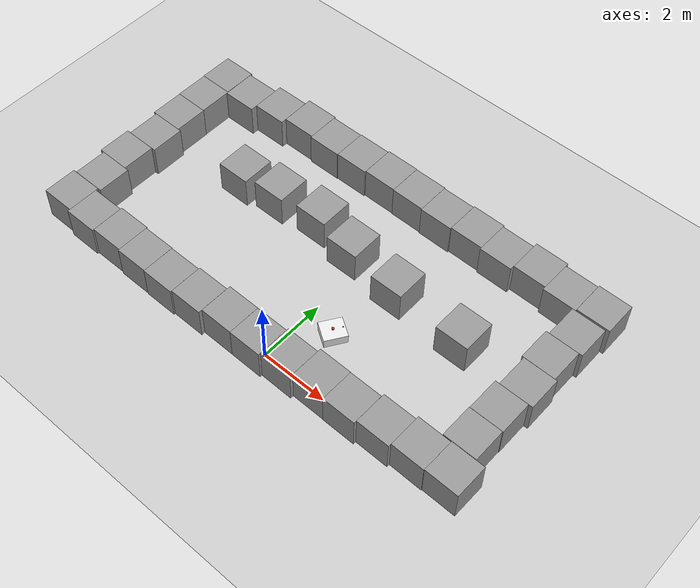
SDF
<sdf version="1.7">
 <world name="default">
  <light name="sun" type="directional">
   <pose>0 0 10 0 -0 0</pose>
   <diffuse>0.8 0.8 0.8 1</diffuse>
   <specular>0.2 0.2 0.2 1</specular>
   <attenuation>
    <range>1000</range>
    <constant>0.9</constant>
    <linear>0.01</linear>
    <quadratic>0.001</quadratic>
   </attenuation>
   <direction>-0.5 0.1 -0.9</direction>
   <spot><inner_angle>0</inner_angle><outer_angle>0</outer_angle><falloff>0</falloff></spot>
  </light>
  <model name="ground_plane">
   <static>1</static>
   <link name="link">
    <collision name="collision">
     <geometry><plane><normal>0 0 1</normal><size>100 100</size></plane></geometry>
     <surface><friction><ode><mu>100</mu><mu2>50</mu2></ode></friction></surface>
    </collision>
    <visual name="visual">
     <cast_shadows>0</cast_shadows>
     <geometry><plane><normal>0 0 1</normal><size>100 100</size></plane></geometry>
     <material>
      <script><uri>file://media/materials/scripts/gazebo.material</uri><name>Gazebo/Grey</name></script>
     </material>
    </visual>
   </link>
  </model>
  <gravity>0 0 -9.8</gravity>
  <magnetic_field>6e-06 2.3e-05 -4.2e-05</magnetic_field>
  <atmosphere type="adiabatic"/>
  <physics type="ode">
   <max_step_size>0.001</max_step_size>
   <real_time_factor>1</real_time_factor>
   <real_time_update_rate>1000</real_time_update_rate>
  </physics>
  <scene><ambient>0.4 0.4 0.4 1</ambient><background>0.7 0.7 0.7 1</background><shadows>1</shadows></scene>
  <audio><device>default</device></audio>
  <spherical_coordinates>
   <surface_model>EARTH_WGS84</surface_model>
   <latitude_deg>0</latitude_deg>
   <longitude_deg>0</longitude_deg>
   <elevation>0</elevation>
   <heading_deg>0</heading_deg>
  </spherical_coordinates>
  <model name="bunker_mini">
   <link name="base_link">
    <inertial>
     <pose>0.007917 0 0.14125 0 -0 0</pose>
     <mass>2.4</mass>
     <inertia>
      <ixx>0.0838745</ixx>
      <ixy>0</ixy>
      <ixz>-0.00263625</ixz>
      <iyy>0.110417</iyy>
      <iyz>0</iyz>
      <izz>0.150863</izz>
     </inertia>
    </inertial>
    <collision name="base_link_fixed_joint_lump__chassis_collision">
     <pose>0 0 0.1405 0 -0 0</pose>
     <geometry><box><size>0.66 0.61 0.281</size></box></geometry>
    </collision>
    <collision name="base_link_fixed_joint_lump__laser_frame_collision_1">
     <pose>0 0 0.3 0 -0 0</pose>
     <geometry><cylinder><length>0.041</length><radius>0.038</radius></cylinder></geometry>
    </collision>
    <collision name="base_link_fixed_joint_lump__front_caster_wheel_collision_2">
     <pose>0.25 0 0 0 -0 0</pose>
     <geometry><sphere><radius>0.05</radius></sphere></geometry>
     <surface><friction><ode><mu>0.001</mu><mu2>0.001</mu2></ode></friction></surface>
    </collision>
    <collision name="base_link_fixed_joint_lump__front_diamond_collision_3">
     <pose>0.27 0 0.28 0 -0 0.785398</pose>
     <geometry><box><size>0.03 0.03 0.02</size></box></geometry>
    </collision>
    <collision name="base_link_fixed_joint_lump__rear_caster_wheel_collision_4">
     <pose>-0.25 0 0 0 -0 0</pose>
     <geometry><sphere><radius>0.05</radius></sphere></geometry>
     <surface><friction><ode><mu>0.001</mu><mu2>0.001</mu2></ode></friction></surface>
    </collision>
    <visual name="base_link_fixed_joint_lump__chassis_visual">
     <pose>0 0 0.1405 0 -0 0</pose>
     <geometry><box><size>0.66 0.61 0.281</size></box></geometry>
     <material>
      <script><name>Gazebo/White</name><uri>file://media/materials/scripts/gazebo.material</uri></script>
     </material>
    </visual>
    <visual name="base_link_fixed_joint_lump__laser_frame_visual_1">
     <pose>0 0 0.3 0 -0 0</pose>
     <geometry><cylinder><length>0.041</length><radius>0.038</radius></cylinder></geometry>
     <material>
      <script><name>Gazebo/Red</name><uri>file://media/materials/scripts/gazebo.material</uri></script>
     </material>
    </visual>
    <visual name="base_link_fixed_joint_lump__front_caster_wheel_visual_2">
     <pose>0.25 0 0 0 -0 0</pose>
     <geometry><sphere><radius>0.05</radius></sphere></geometry>
     <material>
      <script><name>Gazebo/Black</name><uri>file://media/materials/scripts/gazebo.material</uri></script>
     </material>
    </visual>
    <visual name="base_link_fixed_joint_lump__front_diamond_visual_3">
     <pose>0.27 0 0.28 0 -0 0.785398</pose>
     <geometry><box><size>0.03 0.03 0.02</size></box></geometry>
     <material>
      <script><name>Gazebo/Blue</name><uri>file://media/materials/scripts/gazebo.material</uri></script>
     </material>
    </visual>
    <visual name="base_link_fixed_joint_lump__rear_caster_wheel_visual_4">
     <pose>-0.25 0 0 0 -0 0</pose>
     <geometry><sphere><radius>0.05</radius></sphere></geometry>
     <material>
      <script><name>Gazebo/Black</name><uri>file://media/materials/scripts/gazebo.material</uri></script>
     </material>
    </visual>
    <sensor name="rplidar_a2m12" type="ray">
     <visualize>1</visualize>
     <update_rate>10</update_rate>
     <ray>
      <scan>
       <horizontal>
        <samples>360</samples>
        <resolution>1</resolution>
        <min_angle>-3.14</min_angle>
        <max_angle>3.14</max_angle>
       </horizontal>
       <vertical><samples>1</samples><min_angle>0</min_angle><max_angle>0</max_angle></vertical>
      </scan>
      <range><min>0.3</min><max>12</max><resolution>1</resolution></range>
     </ray>
     <plugin name="laser_controller" filename="libgazebo_ros_ray_sensor.so">
      <ros><argument>~/out:=scan</argument></ros>
      <output_type>sensor_msgs/LaserScan</output_type>
      <frame_name>laser_frame</frame_name>
     </plugin>
     <pose>0 0 0.3 0 -0 0</pose>
    </sensor>
   </link>
   <joint name="left_wheel_joint" type="revolute">
    <pose relative_to="base_link">0 0.25 0 -1.5708 0 0</pose>
    <parent>base_link</parent>
    <child>left_wheel</child>
    <axis>
     <xyz>0 0 1</xyz>
     <limit><lower>-1e+16</lower><upper>1e+16</upper></limit>
     <dynamics><spring_reference>0</spring_reference><spring_stiffness>0</spring_stiffness></dynamics>
    </axis>
   </joint>
   <link name="left_wheel">
    <pose relative_to="left_wheel_joint">0 0 0 0 -0 0</pose>
    <inertial>
     <mass>0.1</mass>
     <inertia>
      <ixx>7.58333e-05</ixx>
      <ixy>0</ixy>
      <ixz>0</ixz>
      <iyy>7.58333e-05</iyy>
      <iyz>0</iyz>
      <izz>0.000125</izz>
     </inertia>
    </inertial>
    <collision name="left_wheel_collision">
     <geometry><cylinder><length>0.04</length><radius>0.05</radius></cylinder></geometry>
    </collision>
    <visual name="left_wheel_visual">
     <geometry><cylinder><length>0.04</length><radius>0.05</radius></cylinder></geometry>
     <material>
      <script><name>Gazebo/Blue</name><uri>file://media/materials/scripts/gazebo.material</uri></script>
     </material>
    </visual>
   </link>
   <joint name="right_wheel_joint" type="revolute">
    <pose relative_to="base_link">0 -0.25 0 1.5708 -0 0</pose>
    <parent>base_link</parent>
    <child>right_wheel</child>
    <axis>
     <xyz>0 0 -1</xyz>
     <limit><lower>-1e+16</lower><upper>1e+16</upper></limit>
     <dynamics><spring_reference>0</spring_reference><spring_stiffness>0</spring_stiffness></dynamics>
    </axis>
   </joint>
   <link name="right_wheel">
    <pose relative_to="right_wheel_joint">0 0 0 0 -0 0</pose>
    <inertial>
     <mass>0.1</mass>
     <inertia>
      <ixx>7.58333e-05</ixx>
      <ixy>0</ixy>
      <ixz>0</ixz>
      <iyy>7.58333e-05</iyy>
      <iyz>0</iyz>
      <izz>0.000125</izz>
     </inertia>
    </inertial>
    <collision name="right_wheel_collision">
     <geometry><cylinder><length>0.04</length><radius>0.05</radius></cylinder></geometry>
    </collision>
    <visual name="right_wheel_visual">
     <geometry><cylinder><length>0.04</length><radius>0.05</radius></cylinder></geometry>
     <material>
      <script><name>Gazebo/Blue</name><uri>file://media/materials/scripts/gazebo.material</uri></script>
     </material>
    </visual>
   </link>
   <static>0</static>
   <plugin name="diff_drive" filename="libgazebo_ros_diff_drive.so">
    <left_joint>left_wheel_joint</left_joint>
    <right_joint>right_wheel_joint</right_joint>
    <wheel_separation>0.5</wheel_separation>
    <wheel_diameter>0.1</wheel_diameter>
    <max_wheel_torque>200</max_wheel_torque>
    <max_wheel_acceleration>10</max_wheel_acceleration>
    <odometry_frame>odom</odometry_frame>
    <robot_base_frame>base_link</robot_base_frame>
    <publish_odom>1</publish_odom>
    <publish_odom_tf>1</publish_odom_tf>
    <publish_wheel_tf>1</publish_wheel_tf>
   </plugin>
   <pose>0.89592 1.58402 0.05 0 -0 0.990217</pose>
  </model>
  <model name="unit_box">
   <pose>-0.373525 3.81277 0.499995 0 1e-05 1.1e-05</pose>
   <link name="link">
    <inertial>
     <mass>1</mass>
     <inertia>
      <ixx>0.166667</ixx>
      <ixy>0</ixy>
      <ixz>0</ixz>
      <iyy>0.166667</iyy>
      <iyz>0</iyz>
      <izz>0.166667</izz>
     </inertia>
    </inertial>
    <collision name="collision"><geometry><box><size>1 1 1</size></box></geometry></collision>
    <visual name="visual">
     <geometry><box><size>1 1 1</size></box></geometry>
     <material>
      <script><name>Gazebo/Grey</name><uri>file://media/materials/scripts/gazebo.material</uri></script>
     </material>
    </visual>
   </link>
  </model>
  <model name="unit_box_0">
   <pose>-1.71056 4.0812 0.499995 1e-05 -0 0.000463</pose>
   <link name="link">
    <inertial>
     <mass>1</mass>
     <inertia>
      <ixx>0.166667</ixx>
      <ixy>0</ixy>
      <ixz>0</ixz>
      <iyy>0.166667</iyy>
      <iyz>0</iyz>
      <izz>0.166667</izz>
     </inertia>
    </inertial>
    <collision name="collision"><geometry><box><size>1 1 1</size></box></geometry></collision>
    <visual name="visual">
     <geometry><box><size>1 1 1</size></box></geometry>
     <material>
      <script><name>Gazebo/Grey</name><uri>file://media/materials/scripts/gazebo.material</uri></script>
     </material>
    </visual>
   </link>
  </model>
  <model name="unit_box_1">
   <pose>1.32828 3.61953 0.499995 1e-05 -0 1e-05</pose>
   <link name="link">
    <inertial>
     <mass>1</mass>
     <inertia>
      <ixx>0.166667</ixx>
      <ixy>0</ixy>
      <ixz>0</ixz>
      <iyy>0.166667</iyy>
      <iyz>0</iyz>
      <izz>0.166667</izz>
     </inertia>
    </inertial>
    <collision name="collision"><geometry><box><size>1 1 1</size></box></geometry></collision>
    <visual name="visual">
     <geometry><box><size>1 1 1</size></box></geometry>
     <material>
      <script><name>Gazebo/Grey</name><uri>file://media/materials/scripts/gazebo.material</uri></script>
     </material>
    </visual>
   </link>
  </model>
  <model name="unit_box_2">
   <pose>-3.13165 3.93065 0.499995 1e-05 -0 0.00046</pose>
   <link name="link">
    <inertial>
     <mass>1</mass>
     <inertia>
      <ixx>0.166667</ixx>
      <ixy>0</ixy>
      <ixz>0</ixz>
      <iyy>0.166667</iyy>
      <iyz>0</iyz>
      <izz>0.166667</izz>
     </inertia>
    </inertial>
    <collision name="collision"><geometry><box><size>1 1 1</size></box></geometry></collision>
    <visual name="visual">
     <geometry><box><size>1 1 1</size></box></geometry>
     <material>
      <script><name>Gazebo/Grey</name><uri>file://media/materials/scripts/gazebo.material</uri></script>
     </material>
    </visual>
   </link>
  </model>
  <model name="unit_box_3">
   <pose>-4.32146 3.76959 0.499995 1e-05 -0 0</pose>
   <link name="link">
    <inertial>
     <mass>1</mass>
     <inertia>
      <ixx>0.166667</ixx>
      <ixy>0</ixy>
      <ixz>0</ixz>
      <iyy>0.166667</iyy>
      <iyz>0</iyz>
      <izz>0.166667</izz>
     </inertia>
    </inertial>
    <collision name="collision"><geometry><box><size>1 1 1</size></box></geometry></collision>
    <visual name="visual">
     <geometry><box><size>1 1 1</size></box></geometry>
     <material>
      <script><name>Gazebo/Grey</name><uri>file://media/materials/scripts/gazebo.material</uri></script>
     </material>
    </visual>
   </link>
  </model>
  <model name="unit_box_4">
   <pose>3.56444 3.50287 0.499995 1e-05 -0 0</pose>
   <link name="link">
    <inertial>
     <mass>1</mass>
     <inertia>
      <ixx>0.166667</ixx>
      <ixy>0</ixy>
      <ixz>0</ixz>
      <iyy>0.166667</iyy>
      <iyz>0</iyz>
      <izz>0.166667</izz>
     </inertia>
    </inertial>
    <collision name="collision"><geometry><box><size>1 1 1</size></box></geometry></collision>
    <visual name="visual">
     <geometry><box><size>1 1 1</size></box></geometry>
     <material>
      <script><name>Gazebo/Grey</name><uri>file://media/materials/scripts/gazebo.material</uri></script>
     </material>
    </visual>
   </link>
  </model>
  <model name="unit_box_5">
   <pose>5.86144 0.232165 0.499995 -1e-05 -0 -0.012625</pose>
   <link name="link">
    <inertial>
     <mass>1</mass>
     <inertia>
      <ixx>0.166667</ixx>
      <ixy>0</ixy>
      <ixz>0</ixz>
      <iyy>0.166667</iyy>
      <iyz>0</iyz>
      <izz>0.166667</izz>
     </inertia>
    </inertial>
    <collision name="collision"><geometry><box><size>1 1 1</size></box></geometry></collision>
    <visual name="visual">
     <geometry><box><size>1 1 1</size></box></geometry>
     <material>
      <script><name>Gazebo/Grey</name><uri>file://media/materials/scripts/gazebo.material</uri></script>
     </material>
    </visual>
   </link>
  </model>
  <model name="unit_box_5_clone">
   <pose>5.59621 1.24141 0.499995 -1e-05 -0 -0.003784</pose>
   <link name="link">
    <inertial>
     <mass>1</mass>
     <inertia>
      <ixx>0.166667</ixx>
      <ixy>0</ixy>
      <ixz>0</ixz>
      <iyy>0.166667</iyy>
      <iyz>0</iyz>
      <izz>0.166667</izz>
     </inertia>
    </inertial>
    <collision name="collision"><geometry><box><size>1 1 1</size></box></geometry></collision>
    <visual name="visual">
     <geometry><box><size>1 1 1</size></box></geometry>
     <material>
      <script><name>Gazebo/Grey</name><uri>file://media/materials/scripts/gazebo.material</uri></script>
     </material>
    </visual>
   </link>
  </model>
  <model name="unit_box_5_clone_0">
   <pose>5.61532 2.24167 0.5 -0 -0 -0.003706</pose>
   <link name="link">
    <inertial>
     <mass>1</mass>
     <inertia>
      <ixx>0.166667</ixx>
      <ixy>0</ixy>
      <ixz>0</ixz>
      <iyy>0.166667</iyy>
      <iyz>0</iyz>
      <izz>0.166667</izz>
     </inertia>
    </inertial>
    <collision name="collision"><geometry><box><size>1 1 1</size></box></geometry></collision>
    <visual name="visual">
     <geometry><box><size>1 1 1</size></box></geometry>
     <material>
      <script><name>Gazebo/Grey</name><uri>file://media/materials/scripts/gazebo.material</uri></script>
     </material>
    </visual>
   </link>
  </model>
  <model name="unit_box_5_clone_1">
   <pose>5.73862 3.24132 0.499995 -1e-05 -0 -0.003761</pose>
   <link name="link">
    <inertial>
     <mass>1</mass>
     <inertia>
      <ixx>0.166667</ixx>
      <ixy>0</ixy>
      <ixz>0</ixz>
      <iyy>0.166667</iyy>
      <iyz>0</iyz>
      <izz>0.166667</izz>
     </inertia>
    </inertial>
    <collision name="collision"><geometry><box><size>1 1 1</size></box></geometry></collision>
    <visual name="visual">
     <geometry><box><size>1 1 1</size></box></geometry>
     <material>
      <script><name>Gazebo/Grey</name><uri>file://media/materials/scripts/gazebo.material</uri></script>
     </material>
    </visual>
   </link>
  </model>
  <model name="unit_box_5_clone_2">
   <pose>5.67694 4.24242 0.499995 1e-05 -0 -0.005354</pose>
   <link name="link">
    <inertial>
     <mass>1</mass>
     <inertia>
      <ixx>0.166667</ixx>
      <ixy>0</ixy>
      <ixz>0</ixz>
      <iyy>0.166667</iyy>
      <iyz>0</iyz>
      <izz>0.166667</izz>
     </inertia>
    </inertial>
    <collision name="collision"><geometry><box><size>1 1 1</size></box></geometry></collision>
    <visual name="visual">
     <geometry><box><size>1 1 1</size></box></geometry>
     <material>
      <script><name>Gazebo/Grey</name><uri>file://media/materials/scripts/gazebo.material</uri></script>
     </material>
    </visual>
   </link>
  </model>
  <model name="unit_box_5_clone_3">
   <pose>5.7798 5.24191 0.499995 -1e-05 -0 -0.005334</pose>
   <link name="link">
    <inertial>
     <mass>1</mass>
     <inertia>
      <ixx>0.166667</ixx>
      <ixy>0</ixy>
      <ixz>0</ixz>
      <iyy>0.166667</iyy>
      <iyz>0</iyz>
      <izz>0.166667</izz>
     </inertia>
    </inertial>
    <collision name="collision"><geometry><box><size>1 1 1</size></box></geometry></collision>
    <visual name="visual">
     <geometry><box><size>1 1 1</size></box></geometry>
     <material>
      <script><name>Gazebo/Grey</name><uri>file://media/materials/scripts/gazebo.material</uri></script>
     </material>
    </visual>
   </link>
  </model>
  <model name="unit_box_5_clone_4">
   <pose>5.87593 6.29081 0.5 0 -0 -0.003578</pose>
   <link name="link">
    <inertial>
     <mass>1</mass>
     <inertia>
      <ixx>0.166667</ixx>
      <ixy>0</ixy>
      <ixz>0</ixz>
      <iyy>0.166667</iyy>
      <iyz>0</iyz>
      <izz>0.166667</izz>
     </inertia>
    </inertial>
    <collision name="collision"><geometry><box><size>1 1 1</size></box></geometry></collision>
    <visual name="visual">
     <geometry><box><size>1 1 1</size></box></geometry>
     <material>
      <script><name>Gazebo/Grey</name><uri>file://media/materials/scripts/gazebo.material</uri></script>
     </material>
    </visual>
   </link>
  </model>
  <model name="unit_box_5_clone_5">
   <pose>4.87555 6.24599 0.5 0 0 -0.0034</pose>
   <link name="link">
    <inertial>
     <mass>1</mass>
     <inertia>
      <ixx>0.166667</ixx>
      <ixy>0</ixy>
      <ixz>0</ixz>
      <iyy>0.166667</iyy>
      <iyz>0</iyz>
      <izz>0.166667</izz>
     </inertia>
    </inertial>
    <collision name="collision"><geometry><box><size>1 1 1</size></box></geometry></collision>
    <visual name="visual">
     <geometry><box><size>1 1 1</size></box></geometry>
     <material>
      <script><name>Gazebo/Grey</name><uri>file://media/materials/scripts/gazebo.material</uri></script>
     </material>
    </visual>
   </link>
  </model>
  <model name="unit_box_5_clone_6">
   <pose>3.87584 6.33732 0.5 0 0 -0.003406</pose>
   <link name="link">
    <inertial>
     <mass>1</mass>
     <inertia>
      <ixx>0.166667</ixx>
      <ixy>0</ixy>
      <ixz>0</ixz>
      <iyy>0.166667</iyy>
      <iyz>0</iyz>
      <izz>0.166667</izz>
     </inertia>
    </inertial>
    <collision name="collision"><geometry><box><size>1 1 1</size></box></geometry></collision>
    <visual name="visual">
     <geometry><box><size>1 1 1</size></box></geometry>
     <material>
      <script><name>Gazebo/Grey</name><uri>file://media/materials/scripts/gazebo.material</uri></script>
     </material>
    </visual>
   </link>
  </model>
  <model name="unit_box_5_clone_7">
   <pose>2.87509 6.21199 0.5 0 -0 -0.002672</pose>
   <link name="link">
    <inertial>
     <mass>1</mass>
     <inertia>
      <ixx>0.166667</ixx>
      <ixy>0</ixy>
      <ixz>0</ixz>
      <iyy>0.166667</iyy>
      <iyz>0</iyz>
      <izz>0.166667</izz>
     </inertia>
    </inertial>
    <collision name="collision"><geometry><box><size>1 1 1</size></box></geometry></collision>
    <visual name="visual">
     <geometry><box><size>1 1 1</size></box></geometry>
     <material>
      <script><name>Gazebo/Grey</name><uri>file://media/materials/scripts/gazebo.material</uri></script>
     </material>
    </visual>
   </link>
  </model>
  <model name="unit_box_5_clone_8">
   <pose>1.8752 6.25947 0.499995 0 -1e-05 -0.002654</pose>
   <link name="link">
    <inertial>
     <mass>1</mass>
     <inertia>
      <ixx>0.166667</ixx>
      <ixy>0</ixy>
      <ixz>0</ixz>
      <iyy>0.166667</iyy>
      <iyz>0</iyz>
      <izz>0.166667</izz>
     </inertia>
    </inertial>
    <collision name="collision"><geometry><box><size>1 1 1</size></box></geometry></collision>
    <visual name="visual">
     <geometry><box><size>1 1 1</size></box></geometry>
     <material>
      <script><name>Gazebo/Grey</name><uri>file://media/materials/scripts/gazebo.material</uri></script>
     </material>
    </visual>
   </link>
  </model>
  <model name="unit_box_5_clone_9">
   <pose>0.874463 6.22172 0.499995 0 9e-06 -0.001272</pose>
   <link name="link">
    <inertial>
     <mass>1</mass>
     <inertia>
      <ixx>0.166667</ixx>
      <ixy>0</ixy>
      <ixz>0</ixz>
      <iyy>0.166667</iyy>
      <iyz>0</iyz>
      <izz>0.166667</izz>
     </inertia>
    </inertial>
    <collision name="collision"><geometry><box><size>1 1 1</size></box></geometry></collision>
    <visual name="visual">
     <geometry><box><size>1 1 1</size></box></geometry>
     <material>
      <script><name>Gazebo/Grey</name><uri>file://media/materials/scripts/gazebo.material</uri></script>
     </material>
    </visual>
   </link>
  </model>
  <model name="unit_box_5_clone_10">
   <pose>-0.126002 6.24738 0.499995 0 1e-05 -0.000284</pose>
   <link name="link">
    <inertial>
     <mass>1</mass>
     <inertia>
      <ixx>0.166667</ixx>
      <ixy>0</ixy>
      <ixz>0</ixz>
      <iyy>0.166667</iyy>
      <iyz>0</iyz>
      <izz>0.166667</izz>
     </inertia>
    </inertial>
    <collision name="collision"><geometry><box><size>1 1 1</size></box></geometry></collision>
    <visual name="visual">
     <geometry><box><size>1 1 1</size></box></geometry>
     <material>
      <script><name>Gazebo/Grey</name><uri>file://media/materials/scripts/gazebo.material</uri></script>
     </material>
    </visual>
   </link>
  </model>
  <model name="unit_box_5_clone_11">
   <pose>-1.12649 6.26181 0.5 0 -0 0.000678</pose>
   <link name="link">
    <inertial>
     <mass>1</mass>
     <inertia>
      <ixx>0.166667</ixx>
      <ixy>0</ixy>
      <ixz>0</ixz>
      <iyy>0.166667</iyy>
      <iyz>0</iyz>
      <izz>0.166667</izz>
     </inertia>
    </inertial>
    <collision name="collision"><geometry><box><size>1 1 1</size></box></geometry></collision>
    <visual name="visual">
     <geometry><box><size>1 1 1</size></box></geometry>
     <material>
      <script><name>Gazebo/Grey</name><uri>file://media/materials/scripts/gazebo.material</uri></script>
     </material>
    </visual>
   </link>
  </model>
  <model name="unit_box_5_clone_12">
   <pose>-2.12724 6.22117 0.5 0 -0 0.002372</pose>
   <link name="link">
    <inertial>
     <mass>1</mass>
     <inertia>
      <ixx>0.166667</ixx>
      <ixy>0</ixy>
      <ixz>0</ixz>
      <iyy>0.166667</iyy>
      <iyz>0</iyz>
      <izz>0.166667</izz>
     </inertia>
    </inertial>
    <collision name="collision"><geometry><box><size>1 1 1</size></box></geometry></collision>
    <visual name="visual">
     <geometry><box><size>1 1 1</size></box></geometry>
     <material>
      <script><name>Gazebo/Grey</name><uri>file://media/materials/scripts/gazebo.material</uri></script>
     </material>
    </visual>
   </link>
  </model>
  <model name="unit_box_5_clone_13">
   <pose>-3.12745 6.20067 0.499996 -7e-06 -0 0.002893</pose>
   <link name="link">
    <inertial>
     <mass>1</mass>
     <inertia>
      <ixx>0.166667</ixx>
      <ixy>0</ixy>
      <ixz>0</ixz>
      <iyy>0.166667</iyy>
      <iyz>0</iyz>
      <izz>0.166667</izz>
     </inertia>
    </inertial>
    <collision name="collision"><geometry><box><size>1 1 1</size></box></geometry></collision>
    <visual name="visual">
     <geometry><box><size>1 1 1</size></box></geometry>
     <material>
      <script><name>Gazebo/Grey</name><uri>file://media/materials/scripts/gazebo.material</uri></script>
     </material>
    </visual>
   </link>
  </model>
  <model name="unit_box_5_clone_14">
   <pose>-4.12831 6.23987 0.499995 0 -1e-05 0.00436</pose>
   <link name="link">
    <inertial>
     <mass>1</mass>
     <inertia>
      <ixx>0.166667</ixx>
      <ixy>0</ixy>
      <ixz>0</ixz>
      <iyy>0.166667</iyy>
      <iyz>0</iyz>
      <izz>0.166667</izz>
     </inertia>
    </inertial>
    <collision name="collision"><geometry><box><size>1 1 1</size></box></geometry></collision>
    <visual name="visual">
     <geometry><box><size>1 1 1</size></box></geometry>
     <material>
      <script><name>Gazebo/Grey</name><uri>file://media/materials/scripts/gazebo.material</uri></script>
     </material>
    </visual>
   </link>
  </model>
  <model name="unit_box_5_clone_15">
   <pose>-5.1286 6.0668 0.499995 -1e-05 -0 0.007472</pose>
   <link name="link">
    <inertial>
     <mass>1</mass>
     <inertia>
      <ixx>0.166667</ixx>
      <ixy>0</ixy>
      <ixz>0</ixz>
      <iyy>0.166667</iyy>
      <iyz>0</iyz>
      <izz>0.166667</izz>
     </inertia>
    </inertial>
    <collision name="collision"><geometry><box><size>1 1 1</size></box></geometry></collision>
    <visual name="visual">
     <geometry><box><size>1 1 1</size></box></geometry>
     <material>
      <script><name>Gazebo/Grey</name><uri>file://media/materials/scripts/gazebo.material</uri></script>
     </material>
    </visual>
   </link>
  </model>
  <model name="unit_box_5_clone_16">
   <pose>-6.12718 5.8605 0.499995 0 -1e-05 0.007694</pose>
   <link name="link">
    <inertial>
     <mass>1</mass>
     <inertia>
      <ixx>0.166667</ixx>
      <ixy>0</ixy>
      <ixz>0</ixz>
      <iyy>0.166667</iyy>
      <iyz>0</iyz>
      <izz>0.166667</izz>
     </inertia>
    </inertial>
    <collision name="collision"><geometry><box><size>1 1 1</size></box></geometry></collision>
    <visual name="visual">
     <geometry><box><size>1 1 1</size></box></geometry>
     <material>
      <script><name>Gazebo/Grey</name><uri>file://media/materials/scripts/gazebo.material</uri></script>
     </material>
    </visual>
   </link>
  </model>
  <model name="unit_box_5_clone_17">
   <pose>-7.13394 5.91589 0.499995 -1e-05 -0 -0.005575</pose>
   <link name="link">
    <inertial>
     <mass>1</mass>
     <inertia>
      <ixx>0.166667</ixx>
      <ixy>0</ixy>
      <ixz>0</ixz>
      <iyy>0.166667</iyy>
      <iyz>0</iyz>
      <izz>0.166667</izz>
     </inertia>
    </inertial>
    <collision name="collision"><geometry><box><size>1 1 1</size></box></geometry></collision>
    <visual name="visual">
     <geometry><box><size>1 1 1</size></box></geometry>
     <material>
      <script><name>Gazebo/Grey</name><uri>file://media/materials/scripts/gazebo.material</uri></script>
     </material>
    </visual>
   </link>
  </model>
  <model name="unit_box_5_clone_18">
   <pose>-7.12659 4.91582 0.5 0 -0 -0.005572</pose>
   <link name="link">
    <inertial>
     <mass>1</mass>
     <inertia>
      <ixx>0.166667</ixx>
      <ixy>0</ixy>
      <ixz>0</ixz>
      <iyy>0.166667</iyy>
      <iyz>0</iyz>
      <izz>0.166667</izz>
     </inertia>
    </inertial>
    <collision name="collision"><geometry><box><size>1 1 1</size></box></geometry></collision>
    <visual name="visual">
     <geometry><box><size>1 1 1</size></box></geometry>
     <material>
      <script><name>Gazebo/Grey</name><uri>file://media/materials/scripts/gazebo.material</uri></script>
     </material>
    </visual>
   </link>
  </model>
  <model name="unit_box_5_clone_19">
   <pose>-7.12298 3.91578 0.5 0 -0 -0.005572</pose>
   <link name="link">
    <inertial>
     <mass>1</mass>
     <inertia>
      <ixx>0.166667</ixx>
      <ixy>0</ixy>
      <ixz>0</ixz>
      <iyy>0.166667</iyy>
      <iyz>0</iyz>
      <izz>0.166667</izz>
     </inertia>
    </inertial>
    <collision name="collision"><geometry><box><size>1 1 1</size></box></geometry></collision>
    <visual name="visual">
     <geometry><box><size>1 1 1</size></box></geometry>
     <material>
      <script><name>Gazebo/Grey</name><uri>file://media/materials/scripts/gazebo.material</uri></script>
     </material>
    </visual>
   </link>
  </model>
  <model name="unit_box_5_clone_20">
   <pose>-7.04056 2.9152 0.5 0 -0 -0.005739</pose>
   <link name="link">
    <inertial>
     <mass>1</mass>
     <inertia>
      <ixx>0.166667</ixx>
      <ixy>0</ixy>
      <ixz>0</ixz>
      <iyy>0.166667</iyy>
      <iyz>0</iyz>
      <izz>0.166667</izz>
     </inertia>
    </inertial>
    <collision name="collision"><geometry><box><size>1 1 1</size></box></geometry></collision>
    <visual name="visual">
     <geometry><box><size>1 1 1</size></box></geometry>
     <material>
      <script><name>Gazebo/Grey</name><uri>file://media/materials/scripts/gazebo.material</uri></script>
     </material>
    </visual>
   </link>
  </model>
  <model name="unit_box_5_clone_21">
   <pose>-7.15561 1.91562 0.499995 1e-05 -0 -0.006299</pose>
   <link name="link">
    <inertial>
     <mass>1</mass>
     <inertia>
      <ixx>0.166667</ixx>
      <ixy>0</ixy>
      <ixz>0</ixz>
      <iyy>0.166667</iyy>
      <iyz>0</iyz>
      <izz>0.166667</izz>
     </inertia>
    </inertial>
    <collision name="collision"><geometry><box><size>1 1 1</size></box></geometry></collision>
    <visual name="visual">
     <geometry><box><size>1 1 1</size></box></geometry>
     <material>
      <script><name>Gazebo/Grey</name><uri>file://media/materials/scripts/gazebo.material</uri></script>
     </material>
    </visual>
   </link>
  </model>
  <model name="unit_box_5_clone_22">
   <pose>-7.04213 0.914873 0.499995 -1e-05 -0 -0.006305</pose>
   <link name="link">
    <inertial>
     <mass>1</mass>
     <inertia>
      <ixx>0.166667</ixx>
      <ixy>0</ixy>
      <ixz>0</ixz>
      <iyy>0.166667</iyy>
      <iyz>0</iyz>
      <izz>0.166667</izz>
     </inertia>
    </inertial>
    <collision name="collision"><geometry><box><size>1 1 1</size></box></geometry></collision>
    <visual name="visual">
     <geometry><box><size>1 1 1</size></box></geometry>
     <material>
      <script><name>Gazebo/Grey</name><uri>file://media/materials/scripts/gazebo.material</uri></script>
     </material>
    </visual>
   </link>
  </model>
  <model name="unit_box_5_clone_23">
   <pose>-7.14778 -0.087112 0.499995 1e-05 0 -0.004209</pose>
   <link name="link">
    <inertial>
     <mass>1</mass>
     <inertia>
      <ixx>0.166667</ixx>
      <ixy>0</ixy>
      <ixz>0</ixz>
      <iyy>0.166667</iyy>
      <iyz>0</iyz>
      <izz>0.166667</izz>
     </inertia>
    </inertial>
    <collision name="collision"><geometry><box><size>1 1 1</size></box></geometry></collision>
    <visual name="visual">
     <geometry><box><size>1 1 1</size></box></geometry>
     <material>
      <script><name>Gazebo/Grey</name><uri>file://media/materials/scripts/gazebo.material</uri></script>
     </material>
    </visual>
   </link>
  </model>
  <model name="unit_box_5_clone_24">
   <pose>-6.14802 -0.164766 0.5 0 0 -0.004384</pose>
   <link name="link">
    <inertial>
     <mass>1</mass>
     <inertia>
      <ixx>0.166667</ixx>
      <ixy>0</ixy>
      <ixz>0</ixz>
      <iyy>0.166667</iyy>
      <iyz>0</iyz>
      <izz>0.166667</izz>
     </inertia>
    </inertial>
    <collision name="collision"><geometry><box><size>1 1 1</size></box></geometry></collision>
    <visual name="visual">
     <geometry><box><size>1 1 1</size></box></geometry>
     <material>
      <script><name>Gazebo/Grey</name><uri>file://media/materials/scripts/gazebo.material</uri></script>
     </material>
    </visual>
   </link>
  </model>
  <model name="unit_box_5_clone_25">
   <pose>-5.14757 -0.121706 0.499995 -1e-05 -0 -0.004284</pose>
   <link name="link">
    <inertial>
     <mass>1</mass>
     <inertia>
      <ixx>0.166667</ixx>
      <ixy>0</ixy>
      <ixz>0</ixz>
      <iyy>0.166667</iyy>
      <iyz>0</iyz>
      <izz>0.166667</izz>
     </inertia>
    </inertial>
    <collision name="collision"><geometry><box><size>1 1 1</size></box></geometry></collision>
    <visual name="visual">
     <geometry><box><size>1 1 1</size></box></geometry>
     <material>
      <script><name>Gazebo/Grey</name><uri>file://media/materials/scripts/gazebo.material</uri></script>
     </material>
    </visual>
   </link>
  </model>
  <model name="unit_box_5_clone_26">
   <pose>-4.14764 -0.156799 0.499995 1e-05 -0 -0.00423</pose>
   <link name="link">
    <inertial>
     <mass>1</mass>
     <inertia>
      <ixx>0.166667</ixx>
      <ixy>0</ixy>
      <ixz>0</ixz>
      <iyy>0.166667</iyy>
      <iyz>0</iyz>
      <izz>0.166667</izz>
     </inertia>
    </inertial>
    <collision name="collision"><geometry><box><size>1 1 1</size></box></geometry></collision>
    <visual name="visual">
     <geometry><box><size>1 1 1</size></box></geometry>
     <material>
      <script><name>Gazebo/Grey</name><uri>file://media/materials/scripts/gazebo.material</uri></script>
     </material>
    </visual>
   </link>
  </model>
  <model name="unit_box_5_clone_27">
   <pose>-3.14753 -0.173837 0.499995 1e-05 -0 -0.004401</pose>
   <link name="link">
    <inertial>
     <mass>1</mass>
     <inertia>
      <ixx>0.166667</ixx>
      <ixy>0</ixy>
      <ixz>0</ixz>
      <iyy>0.166667</iyy>
      <iyz>0</iyz>
      <izz>0.166667</izz>
     </inertia>
    </inertial>
    <collision name="collision"><geometry><box><size>1 1 1</size></box></geometry></collision>
    <visual name="visual">
     <geometry><box><size>1 1 1</size></box></geometry>
     <material>
      <script><name>Gazebo/Grey</name><uri>file://media/materials/scripts/gazebo.material</uri></script>
     </material>
    </visual>
   </link>
  </model>
  <model name="unit_box_5_clone_28">
   <pose>-2.14697 -0.13785 0.499995 1e-05 -0 -0.004736</pose>
   <link name="link">
    <inertial>
     <mass>1</mass>
     <inertia>
      <ixx>0.166667</ixx>
      <ixy>0</ixy>
      <ixz>0</ixz>
      <iyy>0.166667</iyy>
      <iyz>0</iyz>
      <izz>0.166667</izz>
     </inertia>
    </inertial>
    <collision name="collision"><geometry><box><size>1 1 1</size></box></geometry></collision>
    <visual name="visual">
     <geometry><box><size>1 1 1</size></box></geometry>
     <material>
      <script><name>Gazebo/Grey</name><uri>file://media/materials/scripts/gazebo.material</uri></script>
     </material>
    </visual>
   </link>
  </model>
  <model name="unit_box_5_clone_29">
   <pose>-1.14469 -0.03997 0.5 0 0 -0.008339</pose>
   <link name="link">
    <inertial>
     <mass>1</mass>
     <inertia>
      <ixx>0.166667</ixx>
      <ixy>0</ixy>
      <ixz>0</ixz>
      <iyy>0.166667</iyy>
      <iyz>0</iyz>
      <izz>0.166667</izz>
     </inertia>
    </inertial>
    <collision name="collision"><geometry><box><size>1 1 1</size></box></geometry></collision>
    <visual name="visual">
     <geometry><box><size>1 1 1</size></box></geometry>
     <material>
      <script><name>Gazebo/Grey</name><uri>file://media/materials/scripts/gazebo.material</uri></script>
     </material>
    </visual>
   </link>
  </model>
  <model name="unit_box_5_clone_30">
   <pose>-0.144331 -0.048978 0.499995 -1e-05 -0 -0.008495</pose>
   <link name="link">
    <inertial>
     <mass>1</mass>
     <inertia>
      <ixx>0.166667</ixx>
      <ixy>0</ixy>
      <ixz>0</ixz>
      <iyy>0.166667</iyy>
      <iyz>0</iyz>
      <izz>0.166667</izz>
     </inertia>
    </inertial>
    <collision name="collision"><geometry><box><size>1 1 1</size></box></geometry></collision>
    <visual name="visual">
     <geometry><box><size>1 1 1</size></box></geometry>
     <material>
      <script><name>Gazebo/Grey</name><uri>file://media/materials/scripts/gazebo.material</uri></script>
     </material>
    </visual>
   </link>
  </model>
  <model name="unit_box_5_clone_31">
   <pose>0.856778 0.007026 0.5 -0 -0 -0.009159</pose>
   <link name="link">
    <inertial>
     <mass>1</mass>
     <inertia>
      <ixx>0.166667</ixx>
      <ixy>0</ixy>
      <ixz>0</ixz>
      <iyy>0.166667</iyy>
      <iyz>0</iyz>
      <izz>0.166667</izz>
     </inertia>
    </inertial>
    <collision name="collision"><geometry><box><size>1 1 1</size></box></geometry></collision>
    <visual name="visual">
     <geometry><box><size>1 1 1</size></box></geometry>
     <material>
      <script><name>Gazebo/Grey</name><uri>file://media/materials/scripts/gazebo.material</uri></script>
     </material>
    </visual>
   </link>
  </model>
  <model name="unit_box_5_clone_32">
   <pose>1.85785 0.093589 0.5 -0 -0 -0.008596</pose>
   <link name="link">
    <inertial>
     <mass>1</mass>
     <inertia>
      <ixx>0.166667</ixx>
      <ixy>0</ixy>
      <ixz>0</ixz>
      <iyy>0.166667</iyy>
      <iyz>0</iyz>
      <izz>0.166667</izz>
     </inertia>
    </inertial>
    <collision name="collision"><geometry><box><size>1 1 1</size></box></geometry></collision>
    <visual name="visual">
     <geometry><box><size>1 1 1</size></box></geometry>
     <material>
      <script><name>Gazebo/Grey</name><uri>file://media/materials/scripts/gazebo.material</uri></script>
     </material>
    </visual>
   </link>
  </model>
  <model name="unit_box_5_clone_33">
   <pose>2.85778 0.078195 0.5 0 0 -0.008545</pose>
   <link name="link">
    <inertial>
     <mass>1</mass>
     <inertia>
      <ixx>0.166667</ixx>
      <ixy>0</ixy>
      <ixz>0</ixz>
      <iyy>0.166667</iyy>
      <iyz>0</iyz>
      <izz>0.166667</izz>
     </inertia>
    </inertial>
    <collision name="collision"><geometry><box><size>1 1 1</size></box></geometry></collision>
    <visual name="visual">
     <geometry><box><size>1 1 1</size></box></geometry>
     <material>
      <script><name>Gazebo/Grey</name><uri>file://media/materials/scripts/gazebo.material</uri></script>
     </material>
    </visual>
   </link>
  </model>
  <model name="unit_box_5_clone_34">
   <pose>3.8589 0.153038 0.5 0 -0 -0.009312</pose>
   <link name="link">
    <inertial>
     <mass>1</mass>
     <inertia>
      <ixx>0.166667</ixx>
      <ixy>0</ixy>
      <ixz>0</ixz>
      <iyy>0.166667</iyy>
      <iyz>0</iyz>
      <izz>0.166667</izz>
     </inertia>
    </inertial>
    <collision name="collision"><geometry><box><size>1 1 1</size></box></geometry></collision>
    <visual name="visual">
     <geometry><box><size>1 1 1</size></box></geometry>
     <material>
      <script><name>Gazebo/Grey</name><uri>file://media/materials/scripts/gazebo.material</uri></script>
     </material>
    </visual>
   </link>
  </model>
  <model name="unit_box_5_clone_35">
   <pose>4.86112 0.225737 0.5 0 0 -0.012298</pose>
   <link name="link">
    <inertial>
     <mass>1</mass>
     <inertia>
      <ixx>0.166667</ixx>
      <ixy>0</ixy>
      <ixz>0</ixz>
      <iyy>0.166667</iyy>
      <iyz>0</iyz>
      <izz>0.166667</izz>
     </inertia>
    </inertial>
    <collision name="collision"><geometry><box><size>1 1 1</size></box></geometry></collision>
    <visual name="visual">
     <geometry><box><size>1 1 1</size></box></geometry>
     <material>
      <script><name>Gazebo/Grey</name><uri>file://media/materials/scripts/gazebo.material</uri></script>
     </material>
    </visual>
   </link>
  </model>
 </world>
</sdf>
